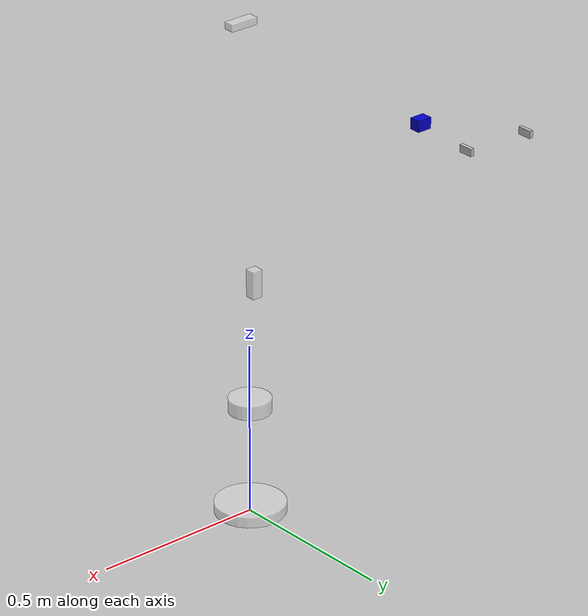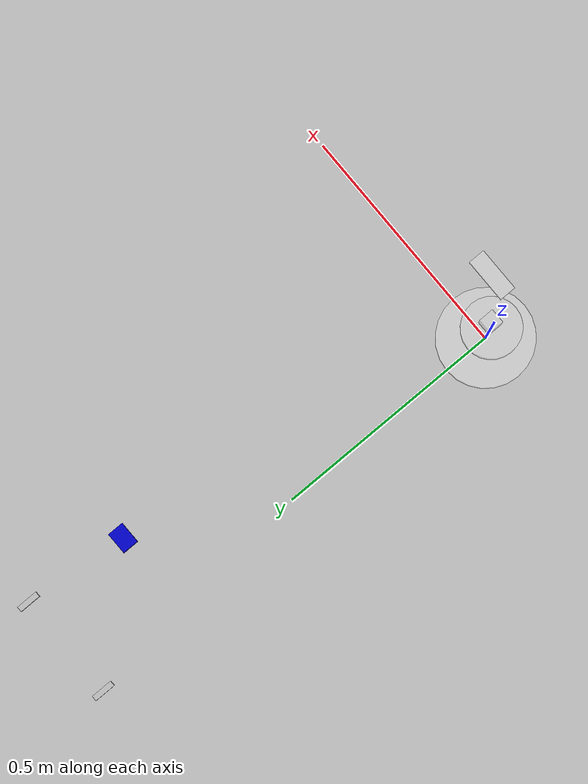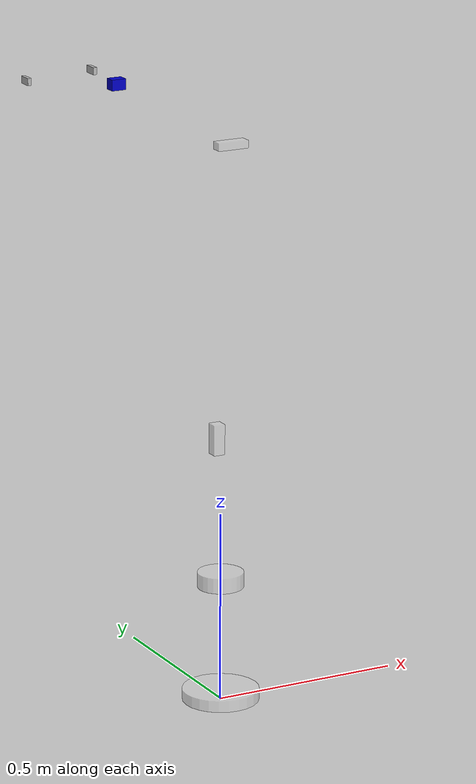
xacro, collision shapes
<?xml version="1.0"?>
<robot xmlns:xacro="http://www.ros.org/wiki/xacro" name="industrial_arm">
    <xacro:arg name="initial_positions_file" default="initial_positions.yaml" />

    <!-- Import industrial_arm urdf file -->
    <xacro:include filename="$(find industrial_arm_description)/xacro/robot_industrial_arm.urdf.xacro" />

    <!-- Import control_xacro -->
    <xacro:include filename="industrial_arm.ros2_control.xacro" />

    <xacro:industrial_arm_ros2_control name="FakeSystem" initial_positions_file="$(arg initial_positions_file)"/>

</robot>

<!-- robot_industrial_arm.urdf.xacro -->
<robot xmlns:xacro="http://www.ros.org/wiki/xacro" name="industrial_arm">

    <xacro:arg name="namespace" default=""/>

    <xacro:if value="${'$(arg namespace)' != ''}">
        <xacro:property name="topic_prefix" value="/$(arg namespace)" />
        <xacro:property name="frame_prefix" value="$(arg namespace)/" />
    </xacro:if>
    <xacro:if value="${'$(arg namespace)' == ''}">
        <xacro:property name="topic_prefix" value="" />
        <xacro:property name="frame_prefix" value="" />
    </xacro:if>

    <xacro:property name="mesh_scale" value="0.01 0.01 0.01" /> <xacro:property name="PI" value="3.14159265359" />

    <material name="silver"><color rgba="0.75 0.75 0.75 1.0"/></material>
    <material name="blue"><color rgba="0.0 0.0 0.8 1.0"/></material>
    <material name="translucent_white"><color rgba="0.9 0.9 0.9 0.6"/></material>

    <link name="world"/>

    <joint name="world_to_base_joint" type="fixed">
        <parent link="world"/>
        <child link="${frame_prefix}base_link"/>
        <origin xyz="0 0 0" rpy="0 0 0"/>
    </joint>

    <xacro:include filename="inertial_macros.xacro"/>

    <xacro:include filename="robot_core.xacro"/>

    <xacro:include filename="gripper.xacro"/>

</robot>

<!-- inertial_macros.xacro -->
<robot xmlns:xacro="http://www.ros.org/wiki/xacro">

    <xacro:macro name="inertial_sphere" params="mass radius *origin">
        <inertial>
            <xacro:insert_block name="origin"/>
            <mass value="${mass}"/>
            <inertia ixx="${(2/5) * mass * radius * radius}" ixy="0.0" ixz="0.0"
                     iyy="${(2/5) * mass * radius * radius}" iyz="0.0"
                     izz="${(2/5) * mass * radius * radius}"/>
        </inertial>
    </xacro:macro>

    <xacro:macro name="inertial_box" params="mass x y z *origin">
        <inertial>
            <xacro:insert_block name="origin"/>
            <mass value="${mass}"/>
            <inertia ixx="${(1/12) * mass * (y*y + z*z)}" ixy="0.0" ixz="0.0"
                     iyy="${(1/12) * mass * (x*x + z*z)}" iyz="0.0"
                     izz="${(1/12) * mass * (x*x + y*y)}"/>
        </inertial>
    </xacro:macro>

    <xacro:macro name="inertial_cylinder" params="mass radius length *origin">
        <inertial>
            <xacro:insert_block name="origin"/>
            <mass value="${mass}"/>
            <inertia ixx="${(1/12) * mass * (3*radius*radius + length*length)}" ixy="0.0" ixz="0.0"
                     iyy="${(1/12) * mass * (3*radius*radius + length*length)}" iyz="0.0"
                     izz="${(1/2) * mass * radius * radius}"/>
        </inertial>
    </xacro:macro>

</robot>

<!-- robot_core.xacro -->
<robot xmlns:xacro="http://www.ros.org/wiki/xacro">

    <link name="${frame_prefix}base_link">
        <visual>
            <origin xyz="-0.5 -0.5 0" rpy="0 0 0"/> <geometry>
                <mesh filename="package://industrial_arm_description/meshes/basement.STL" scale="${mesh_scale}"/>
            </geometry>
            <material name="translucent_white"/>
        </visual>
        <collision>
            <origin xyz="0 0 0.015" rpy="0 0 0"/>
            <geometry>
                <cylinder radius="0.10" length="0.03"/>
            </geometry>
        </collision>
        <xacro:inertial_cylinder mass="0.5" radius="0.10" length="0.03">
            <origin xyz="0 0 0.015" rpy="0 0 0"/>
        </xacro:inertial_cylinder>
    </link>

    <joint name="joint1" type="revolute">
        <parent link="${frame_prefix}base_link"/>
        <child link="${frame_prefix}base_plate"/>
        <origin xyz="0 0 0.307" rpy="0 0 0"/> <axis xyz="0 0 1"/>
        <limit lower="-${PI}" upper="${PI}" effort="10.0" velocity="2.5"/>
    </joint>

    <link name="${frame_prefix}base_plate">
        <visual>
            <origin xyz="-0.39 -0.39 -0.56" rpy="0 0 0"/> <geometry>
                <mesh filename="package://industrial_arm_description/meshes/base_plate.STL" scale="${mesh_scale}"/>
            </geometry>
            <material name="translucent_white"/>
        </visual>
        <collision>
            <origin xyz="0 0 0.02" rpy="0 0 0"/>
            <geometry>
                <cylinder radius="0.06" length="0.04"/>
            </geometry>
        </collision>
        <xacro:inertial_cylinder mass="0.3" radius="0.06" length="0.04">
            <origin xyz="0 0 0.02" rpy="0 0 0"/>
        </xacro:inertial_cylinder>
    </link>

    <joint name="joint2" type="revolute">
        <parent link="${frame_prefix}base_plate"/>
        <child link="${frame_prefix}forward_drive_arm"/>
        <origin xyz="0 0.02 0.35" rpy="0 0 0"/> <axis xyz="1 0 0"/>
        <limit lower="-${PI/2}" upper="${PI/2}" effort="15.0" velocity="2.0"/>
    </joint>

    <link name="${frame_prefix}forward_drive_arm">
        <visual>
            <origin xyz="0.19 0.06 -0.08" rpy="0 -${PI/2} ${PI/2}"/> <geometry>
                <mesh filename="package://industrial_arm_description/meshes/forward_drive_arm.STL" scale="${mesh_scale}"/>
            </geometry>
            <material name="translucent_white"/>
        </visual>
        <collision>
            <origin xyz="0 0 0.04" rpy="0 0 0"/>
            <geometry>
                <box size="0.03 0.03 0.08"/>
            </geometry>
        </collision>
        <xacro:inertial_box mass="0.2" x="0.03" y="0.03" z="0.08">
            <origin xyz="0 0 0.04" rpy="0 0 0"/>
        </xacro:inertial_box>
    </link>

    <joint name="joint3" type="revolute">
        <parent link="${frame_prefix}forward_drive_arm"/>
        <child link="${frame_prefix}horizontal_arm"/>
        <origin xyz="0 0 0.80" rpy="0 0 0"/> <axis xyz="1 0 0"/>
        <limit lower="-${PI/2}" upper="${PI/2}" effort="12.0" velocity="2.0"/>
    </joint>

    <link name="${frame_prefix}horizontal_arm">
        <visual>
            <origin xyz="-0.03 -0.4 -0.06" rpy="${PI/2} 0 ${PI/2}"/> <geometry>
                <mesh filename="package://industrial_arm_description/meshes/horizontal_arm.STL" scale="${mesh_scale}"/>
            </geometry>
            <material name="translucent_white"/>
        </visual>
        <collision>
            <origin xyz="0.04 0 0" rpy="0 ${PI/2} 0"/>
            <geometry>
                <box size="0.02 0.03 0.082"/>
            </geometry>
        </collision>
        <xacro:inertial_box mass="0.15" x="0.082" y="0.03" z="0.02">
            <origin xyz="0.04 0 0" rpy="0 0 0"/>
        </xacro:inertial_box>
    </link>

    <joint name="wrist_fixed_joint" type="fixed">
        <parent link="${frame_prefix}horizontal_arm"/>
        <child link="${frame_prefix}claw_support"/>
        <origin xyz="0.1 0.75 0" rpy="0 0 ${PI/2}"/>
    </joint>

    <link name="${frame_prefix}claw_support">
        <visual>
            <origin xyz="0 -0.05 -0.15" rpy="0 0 ${PI*2}"/> <geometry>
                <mesh filename="package://industrial_arm_description/meshes/claw_support.STL" scale="${mesh_scale}"/>
            </geometry>
            <material name="blue"/>
        </visual>
        <collision>
            <origin xyz="0.01 0 0" rpy="0 0 0"/>
            <geometry>
                <box size="0.03 0.04 0.03"/>
            </geometry>
        </collision>
        <xacro:inertial_box mass="0.1" x="0.03" y="0.04" z="0.03">
            <origin xyz="0.01 0 0" rpy="0 0 0"/>
        </xacro:inertial_box>
    </link>

</robot>

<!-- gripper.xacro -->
<robot xmlns:xacro="http://www.ros.org/wiki/xacro">

    <joint name="joint4" type="revolute">
        <parent link="${frame_prefix}claw_support"/>
        <child link="${frame_prefix}gripper_right"/>
        <origin xyz="0.18 -0.01 0.0" rpy="0 0 -${PI/2}"/>
        <axis xyz="0 0 1"/>
        <limit lower="-0.7" upper="0.0" effort="5.0" velocity="1.0"/>
    </joint>

    <link name="${frame_prefix}gripper_right">
        <visual>
            <origin xyz="-0.1 0.5 -0.1" rpy="0 0 -${PI/2}"/>
            <geometry>
                <mesh filename="package://industrial_arm_description/meshes/right_finger.STL" scale="${mesh_scale}"/>
            </geometry>
            <material name="silver"/>
        </visual>
        <collision>
            <origin xyz="0.01 0.02 0" rpy="0 0 0"/>
            <geometry>
                <box size="0.01 0.04 0.02"/>
            </geometry>
        </collision>
        <xacro:inertial_box mass="0.02" x="0.01" y="0.04" z="0.02">
            <origin xyz="0.01 0.02 0" rpy="0 0 0"/>
        </xacro:inertial_box>
    </link>

    <joint name="gripper_left_joint" type="revolute">
        <parent link="${frame_prefix}claw_support"/>
        <child link="${frame_prefix}gripper_left"/>
        <origin xyz="0.18 0.165 -0.01" rpy="0 0 -${PI/2}"/>
        <axis xyz="0 0 1"/>
        <mimic joint="joint4" multiplier="-1"/>
        <limit lower="-0.7" upper="0.0" effort="5.0" velocity="1.0"/>
    </joint>

    <link name="${frame_prefix}gripper_left">
        <visual>
            <origin xyz="-0.04 0.5 -0.1" rpy="0 0 -${PI/2}"/>
            <geometry>
                <mesh filename="package://industrial_arm_description/meshes/left_finger.STL" scale="${mesh_scale}"/>
            </geometry>
            <material name="silver"/>
        </visual>
        <collision>
            <origin xyz="-0.01 0.02 0" rpy="0 0 0"/>
            <geometry>
                <box size="0.01 0.04 0.02"/>
            </geometry>
        </collision>
        <xacro:inertial_box mass="0.02" x="0.01" y="0.04" z="0.02">
            <origin xyz="-0.01 0.02 0" rpy="0 0 0"/>
        </xacro:inertial_box>
    </link>

</robot>
